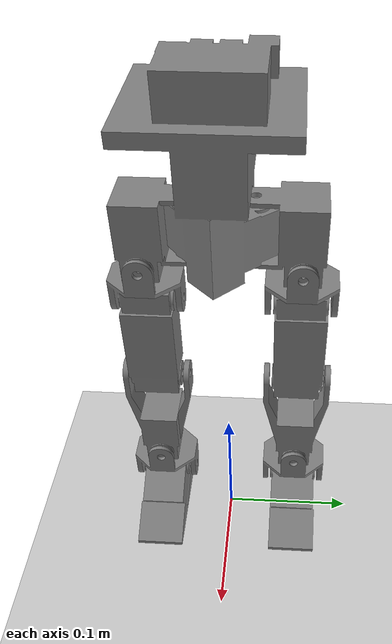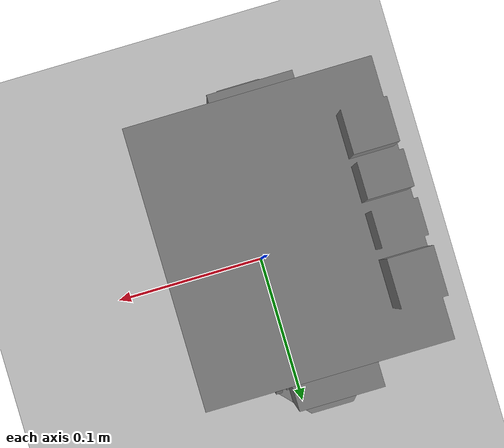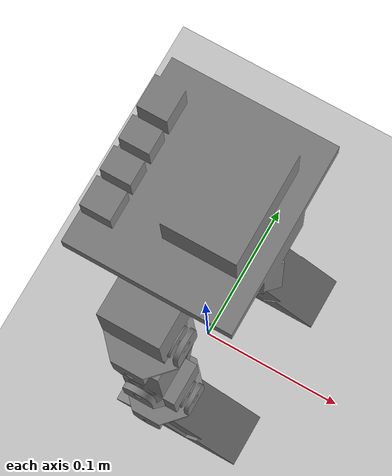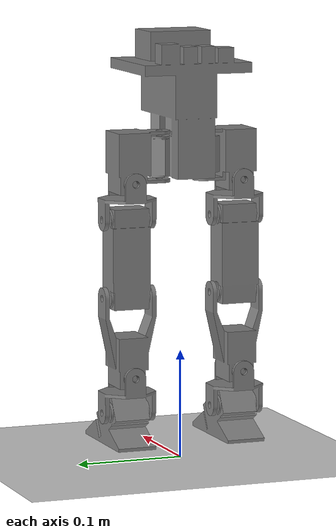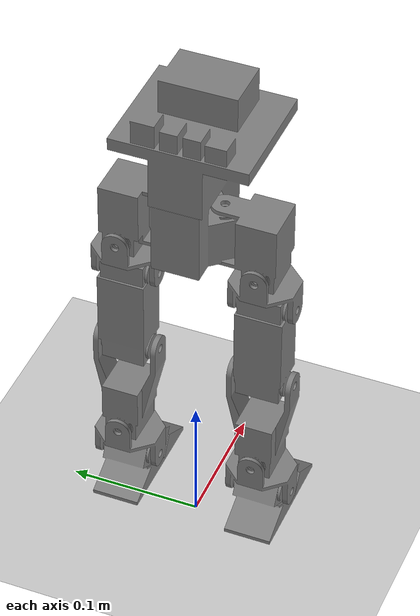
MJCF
<mujoco model="Robot">
  <compiler angle="radian" />
  <asset>
    <mesh name="base_link" content_type="model/stl" file="C:/Users/pablo/Desktop/Projects/isaac_env/BipedRobot/envs/assets/robotV2/Robot_description/meshes/base_link.stl" scale="0.001 0.001 0.001" />
    <mesh name="l_hip_lower_link_1" content_type="model/stl" file="C:/Users/pablo/Desktop/Projects/isaac_env/BipedRobot/envs/assets/robotV2/Robot_description/meshes/l_hip_lower_link_1.stl" scale="0.001 0.001 0.001" />
    <mesh name="r_hip_lower_link_1" content_type="model/stl" file="C:/Users/pablo/Desktop/Projects/isaac_env/BipedRobot/envs/assets/robotV2/Robot_description/meshes/r_hip_lower_link_1.stl" scale="0.001 0.001 0.001" />
    <mesh name="r_thigh_link_1" content_type="model/stl" file="C:/Users/pablo/Desktop/Projects/isaac_env/BipedRobot/envs/assets/robotV2/Robot_description/meshes/r_thigh_link_1.stl" scale="0.001 0.001 0.001" />
    <mesh name="l_thigh_link_1" content_type="model/stl" file="C:/Users/pablo/Desktop/Projects/isaac_env/BipedRobot/envs/assets/robotV2/Robot_description/meshes/l_thigh_link_1.stl" scale="0.001 0.001 0.001" />
    <mesh name="r_calf_link_1" content_type="model/stl" file="C:/Users/pablo/Desktop/Projects/isaac_env/BipedRobot/envs/assets/robotV2/Robot_description/meshes/r_calf_link_1.stl" scale="0.001 0.001 0.001" />
    <mesh name="l_calf_link_1" content_type="model/stl" file="C:/Users/pablo/Desktop/Projects/isaac_env/BipedRobot/envs/assets/robotV2/Robot_description/meshes/l_calf_link_1.stl" scale="0.001 0.001 0.001" />
    <mesh name="r_ankle_link_1" content_type="model/stl" file="C:/Users/pablo/Desktop/Projects/isaac_env/BipedRobot/envs/assets/robotV2/Robot_description/meshes/r_ankle_link_1.stl" scale="0.001 0.001 0.001" />
    <mesh name="l_ankle_link_1" content_type="model/stl" file="C:/Users/pablo/Desktop/Projects/isaac_env/BipedRobot/envs/assets/robotV2/Robot_description/meshes/l_ankle_link_1.stl" scale="0.001 0.001 0.001" />
    <mesh name="r_foot_link_1" content_type="model/stl" file="C:/Users/pablo/Desktop/Projects/isaac_env/BipedRobot/envs/assets/robotV2/Robot_description/meshes/r_foot_link_1.stl" scale="0.001 0.001 0.001" />
    <mesh name="l_foot_link_1" content_type="model/stl" file="C:/Users/pablo/Desktop/Projects/isaac_env/BipedRobot/envs/assets/robotV2/Robot_description/meshes/l_foot_link_1.stl" scale="0.001 0.001 0.001" />
    <mesh name="r_hip_upper_link_1" content_type="model/stl" file="C:/Users/pablo/Desktop/Projects/isaac_env/BipedRobot/envs/assets/robotV2/Robot_description/meshes/r_hip_upper_link_1.stl" scale="0.001 0.001 0.001" />
    <mesh name="l_hip_upper_link_1" content_type="model/stl" file="C:/Users/pablo/Desktop/Projects/isaac_env/BipedRobot/envs/assets/robotV2/Robot_description/meshes/l_hip_upper_link_1.stl" scale="0.001 0.001 0.001" />
  </asset>
  <worldbody>
    <geom name="floor" type="plane" size="0 0 0.05" condim="3" friction="1 0 0" rgba="0.8 0.8 0.8 1" />
    <body name="base_link" pos="0 0 0.3">
      <freejoint name="root" />
      <site name="imu_site" pos="-0.023673 0.0 0.025133" size="0.005"/>
      <geom type="mesh" mesh="base_link" />
      <body name="r_hip_upper_link_1" pos="-0.00159 -0.021672 -0.00015">
        <inertial pos="0.000373 -0.028289 -0.025073" quat="0.991362 -0.075738 -0.044505 -0.0973831" mass="0.100649" diaginertia="3.41054e-05 3.32919e-05 2.06027e-05" />
        <joint name="r_hip_yaw" pos="0 0 0" axis="0 0 -1" range="-0.785398 0.785398" actuatorfrcrange="-100 100" />
        <geom pos="0.00159 0.021672 0.00015" type="mesh" mesh="r_hip_upper_link_1" />
        <body name="r_hip_lower_link_1" pos="0.0191 -0.030829 -0.040776">
          <inertial pos="-0.018233 0.000383 -0.01695" quat="0.5 0.5 -0.5 0.5" mass="0.021339" diaginertia="9e-06 8e-06 8e-06" />
          <joint name="r_hip_roll_joint" pos="0 0 0" axis="-1 0 0" range="-0.436332 1.5708" actuatorfrcrange="-100 100" />
          <geom pos="-0.01751 0.052501 0.040926" quat="1 0 0 0" type="mesh" mesh="r_hip_lower_link_1" />
          <body name="r_thigh_link_1" pos="-0.018625 0.020625 -0.0339">
            <inertial pos="7e-06 -0.020639 -0.036026" mass="0.168697" diaginertia="0.000136 0.000126 2.6e-05" />
            <joint name="r_hip_pitch_joint" pos="0 0 0" axis="0 1 0" range="-1.5708 1.5708" actuatorfrcrange="-100 100" />
            <geom pos="0.001115 0.031876 0.074826" type="mesh" mesh="r_thigh_link_1" />
            <body name="r_calf_link_1" pos="0 -0.002 -0.072052">
              <inertial pos="-5.4e-05 -0.018976 -0.052521" quat="0.999708 -0.0164918 -0.0157152 -0.00805952" mass="0.10503" diaginertia="5.40317e-05 5.20327e-05 2.19356e-05" />
              <joint name="r_knee_joint" pos="0 0 0" axis="0 -1 0" range="-2.0944 2.0944" actuatorfrcrange="-100 100" />
              <geom pos="0.001115 0.033876 0.146878" type="mesh" mesh="r_calf_link_1" />
              <body name="r_ankle_link_1" pos="0.018625 -0.019101 -0.072184">
                <inertial pos="-0.018233 0.000383 -0.01695" quat="0.5 0.5 -0.5 0.5" mass="0.021339" diaginertia="9e-06 8e-06 8e-06" />
                <joint name="r_ankle_roll_joint" pos="0 0 0" axis="-1 0 0" range="-1.39626 1.39626" actuatorfrcrange="-100 100" />
                <geom pos="-0.01751 0.052977 0.219062" quat="1 0 0 0" type="mesh" mesh="r_ankle_link_1" />
                <body name="r_foot_link_1" pos="-0.018625 0.020625 -0.0339">
                  <inertial pos="0.012165 -0.020745 -0.00995" quat="0.0695675 0.857469 0.0553671 0.506795" mass="0.096795" diaginertia="3.49021e-05 3.19752e-05 1.81228e-05" />
                  <joint name="r_ankle_pitch_joint" pos="0 0 0" axis="0 1 0" range="-0.610865 1.48353" actuatorfrcrange="-100 100" />
                  <geom pos="0.001115 0.032352 0.252962" quat="1 0 0 0" type="mesh" mesh="r_foot_link_1" />
                </body>
              </body>
            </body>
          </body>
        </body>
      </body>
      <body name="l_hip_upper_link_1" pos="-0.00159 0.021672 -0.00015">
        <inertial pos="0.000373 0.028289 -0.025073" quat="0.991362 0.075738 -0.044505 0.0973831" mass="0.100649" diaginertia="3.41054e-05 3.32919e-05 2.06027e-05" />
        <joint name="l_hip_yaw" pos="0 0 0" axis="0 0 1" range="-0.785398 0.785398" actuatorfrcrange="-100 100" />
        <geom pos="0.00159 -0.021672 0.00015" type="mesh" mesh="l_hip_upper_link_1" />
        <body name="l_hip_lower_link_1" pos="0.0191 0.030829 -0.040776">
          <inertial pos="-0.018233 -0.000383 -0.01695" quat="0.5 0.5 -0.5 0.5" mass="0.021339" diaginertia="9e-06 8e-06 8e-06" />
          <joint name="l_hip_roll_joint" pos="0 0 0" axis="1 0 0" range="-0.436332 1.5708" actuatorfrcrange="-100 100" />
          <geom pos="-0.01751 -0.052501 0.040926" quat="1 0 0 0" type="mesh" mesh="l_hip_lower_link_1" />
          <body name="l_thigh_link_1" pos="-0.018625 -0.020625 -0.0339">
            <inertial pos="7e-06 0.020639 -0.036026" mass="0.168697" diaginertia="0.000136 0.000126 2.6e-05" />
            <joint name="l_hip_pitch_joint" pos="0 0 0" axis="0 1 0" range="-1.5708 1.5708" actuatorfrcrange="-100 100" />
            <geom pos="0.001115 -0.031876 0.074826" type="mesh" mesh="l_thigh_link_1" />
            <body name="l_calf_link_1" pos="0 0.002 -0.072052">
              <inertial pos="-5.4e-05 0.018976 -0.052521" quat="0.999708 0.0164918 -0.0157152 0.00805952" mass="0.10503" diaginertia="5.40317e-05 5.20327e-05 2.19356e-05" />
              <joint name="l_knee_joint" pos="0 0 0" axis="0 -1 0" range="-2.0944 2.0944" actuatorfrcrange="-100 100" />
              <geom pos="0.001115 -0.033876 0.146878" type="mesh" mesh="l_calf_link_1" />
              <body name="l_ankle_link_1" pos="0.018625 0.019101 -0.072184">
                <inertial pos="-0.018233 -0.000383 -0.01695" quat="0.5 0.5 -0.5 0.5" mass="0.021339" diaginertia="9e-06 8e-06 8e-06" />
                <joint name="l_ankle_roll_joint" pos="0 0 0" axis="1 0 0" range="-1.39626 1.39626" actuatorfrcrange="-100 100" />
                <geom pos="-0.01751 -0.052977 0.219062" quat="1 0 0 0" type="mesh" mesh="l_ankle_link_1" />
                <body name="l_foot_link_1" pos="-0.018625 -0.020625 -0.0339">
                  <inertial pos="0.012165 0.020745 -0.00995" quat="-0.0695675 0.857469 -0.0553671 0.506795" mass="0.096795" diaginertia="3.49021e-05 3.19752e-05 1.81228e-05" />
                  <joint name="l_ankle_pitch_joint" pos="0 0 0" axis="0 1 0" range="-0.610865 1.48353" actuatorfrcrange="-100 100" />
                  <geom pos="0.001115 -0.032352 0.252962" quat="1 0 0 0" type="mesh" mesh="l_foot_link_1" />
                </body>
              </body>
            </body>
          </body>
        </body>
      </body>
    </body>
    <light name="main_light" pos="0 -4 4" dir="0 1 -1" diffuse="0.8 0.8 0.8" />
  </worldbody>
  <option timestep="0.005" integrator="implicitfast" />
  <default>
    <!-- damping=0: passive joint damping removed; velocity damping is now in the Python PD -->
    <joint damping="0" armature="0.04" frictionloss="0.2" />
  </default>
  <actuator>
    <!-- motor (torque pass-through): Python step() computes tau = clip(kp*err - kd*vel, -3, 3) -->
    <motor name="l_hip_yaw" joint="l_hip_yaw" ctrlrange="-3 3" />
    <motor name="r_hip_yaw" joint="r_hip_yaw" ctrlrange="-3 3" />
    <motor name="l_hip_roll_joint" joint="l_hip_roll_joint" ctrlrange="-3 3" />
    <motor name="r_hip_roll_joint" joint="r_hip_roll_joint" ctrlrange="-3 3" />
    <motor name="l_hip_pitch_joint" joint="l_hip_pitch_joint" ctrlrange="-3 3" />
    <motor name="r_hip_pitch_joint" joint="r_hip_pitch_joint" ctrlrange="-3 3" />
    <motor name="l_knee_joint" joint="l_knee_joint" ctrlrange="-3 3" />
    <motor name="r_knee_joint" joint="r_knee_joint" ctrlrange="-3 3" />
    <motor name="l_ankle_roll_joint" joint="l_ankle_roll_joint" ctrlrange="-3 3" />
    <motor name="r_ankle_roll_joint" joint="r_ankle_roll_joint" ctrlrange="-3 3" />
    <motor name="l_ankle_pitch_joint" joint="l_ankle_pitch_joint" ctrlrange="-3 3" />
    <motor name="r_ankle_pitch_joint" joint="r_ankle_pitch_joint" ctrlrange="-3 3" />
  </actuator>
</mujoco>
